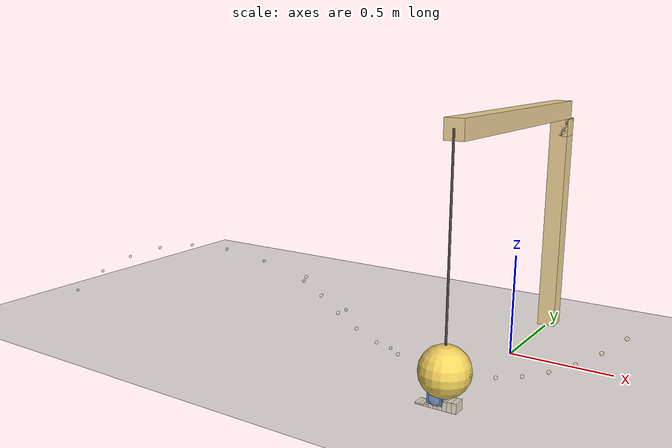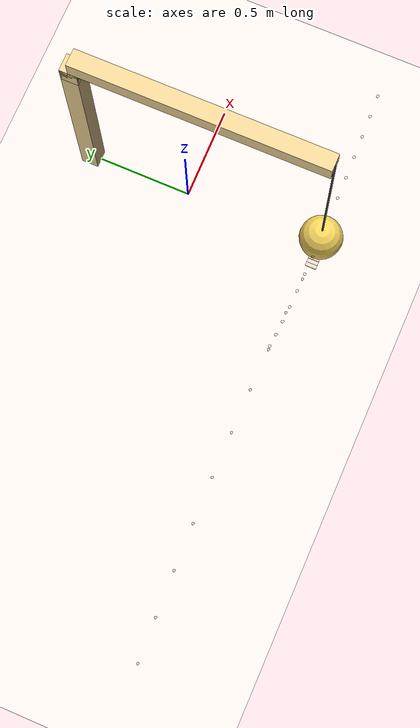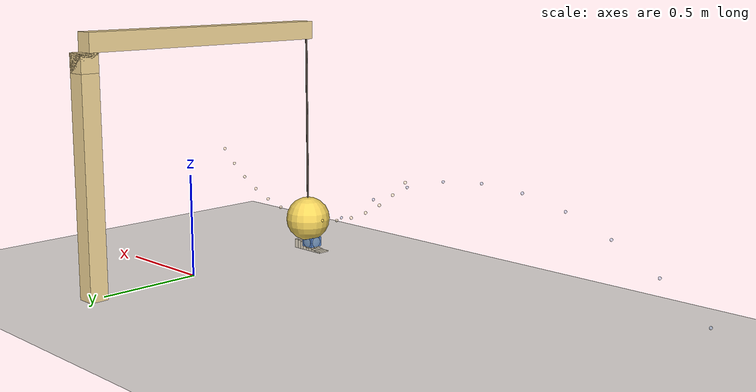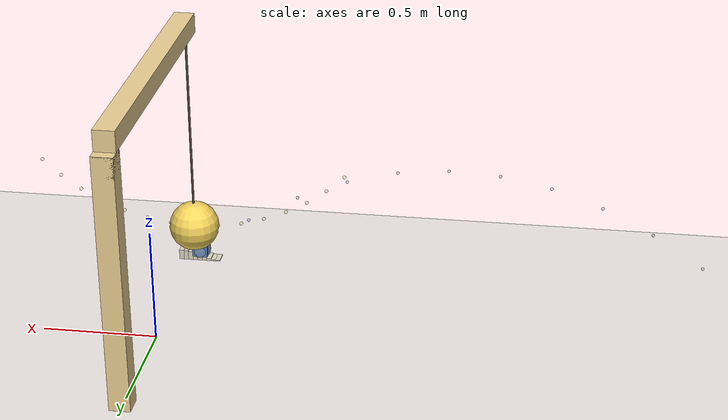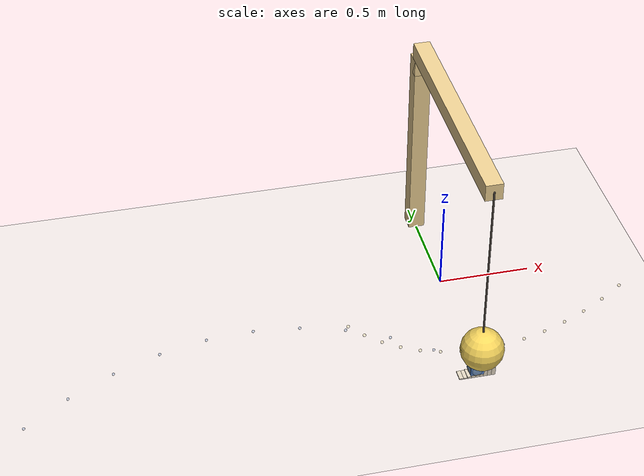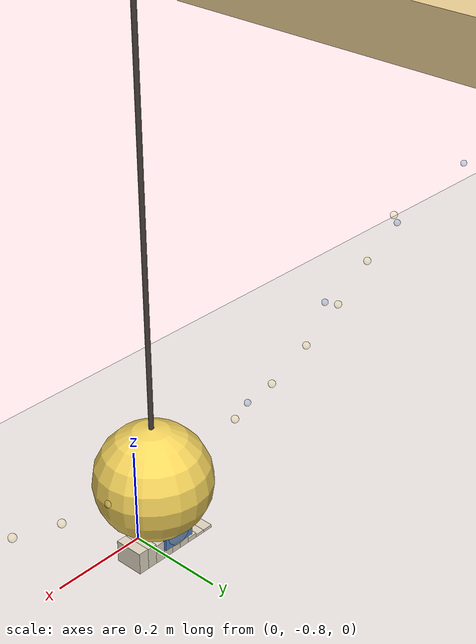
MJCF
<mujoco model="cradle_drop_demo">
  <compiler angle="radian" coordinate="local" autolimits="true"/>
  <option timestep="0.001" gravity="0 0 -9.81" integrator="implicitfast"
          impratio="3" cone="elliptic"/>

  <visual>
    <headlight diffuse="0 0 0" ambient="0.50 0.48 0.55" specular="0 0 0"/>
    <rgba haze="0.94 0.91 0.90 1"/>
    <global azimuth="120" elevation="-15" offwidth="1920" offheight="1080" fovy="40"/>
    <quality shadowsize="8192" offsamples="8"/>
    <map shadowclip="5" shadowscale="0.7"/>
  </visual>

  <asset>
    <texture type="skybox" builtin="flat"
             rgb1="0.74 0.68 0.86" rgb2="0.74 0.68 0.86"
             width="512" height="512" mark="none" markrgb="0 0 0"/>
    <material name="floor_mat" rgba="0.94 0.91 0.90 1" specular="0" shininess="0"/>
    <material name="wood" rgba="0.93 0.82 0.58 1" specular="0.1" shininess="0.1"/>
    <material name="ramp_mat" rgba="0.88 0.84 0.76 1" specular="0.05" shininess="0.05"/>
    <material name="bob_yellow" rgba="0.96 0.83 0.36 1" specular="0.35" shininess="0.4"/>
    <material name="block_blue" rgba="0.34 0.52 0.80 1" specular="0.35" shininess="0.4"/>
    <material name="string_mat" rgba="0.28 0.25 0.22 1" specular="0" shininess="0"/>
  </asset>

  <default>
    <geom friction="0.7 0.04 0.001" solref="0.002 1" solimp="0.97 0.99 0.001"/>
  </default>

  <worldbody>
    <light pos="0 0 10" dir="-0.35 0.55 -1" directional="true" castshadow="true"
           diffuse="0.85 0.82 0.78" specular="0.15 0.15 0.15"/>
    <light pos="0 0 6" dir="0.45 -0.3 -1" directional="true" castshadow="false"
           diffuse="0.30 0.30 0.36" specular="0 0 0"/>

    <geom name="floor" type="plane" size="40 40 0.1" material="floor_mat"/>

    <!-- L-stand: vertical post meets horizontal arm (no gap) -->
    <geom type="box" size="0.045 0.045 0.5600"
          pos="0 0.55 0.5600" material="wood"/>
    <geom type="box" size="0.045 0.65 0.045"
          pos="0 -0.10 1.1650" material="wood"/>
    <!-- corner block where post top meets arm -->
    <geom type="box" size="0.045 0.045 0.045"
          pos="0 0.55 1.0750" material="wood"/>

    <geom name="ramp_0" type="box" pos="-0.1100 -0.75 0.0030" size="0.011 0.030 0.0030" material="ramp_mat" contype="0" conaffinity="0"/>
    <geom name="ramp_1" type="box" pos="-0.0887 -0.75 0.0030" size="0.011 0.030 0.0030" material="ramp_mat" contype="0" conaffinity="0"/>
    <geom name="ramp_2" type="box" pos="-0.0675 -0.75 0.0051" size="0.011 0.030 0.0051" material="ramp_mat" contype="0" conaffinity="0"/>
    <geom name="ramp_3" type="box" pos="-0.0462 -0.75 0.0085" size="0.011 0.030 0.0085" material="ramp_mat" contype="0" conaffinity="0"/>
    <geom name="ramp_4" type="box" pos="-0.0250 -0.75 0.0125" size="0.011 0.030 0.0125" material="ramp_mat" contype="0" conaffinity="0"/>
    <geom name="ramp_5" type="box" pos="-0.0038 -0.75 0.0165" size="0.011 0.030 0.0165" material="ramp_mat" contype="0" conaffinity="0"/>
    <geom name="ramp_6" type="box" pos="0.0175 -0.75 0.0199" size="0.011 0.030 0.0199" material="ramp_mat" contype="0" conaffinity="0"/>
    <geom name="ramp_7" type="box" pos="0.0387 -0.75 0.0222" size="0.011 0.030 0.0222" material="ramp_mat" contype="0" conaffinity="0"/>
    <geom name="ramp_8" type="box" pos="0.0600 -0.75 0.0230" size="0.011 0.030 0.0230" material="ramp_mat" contype="0" conaffinity="0"/>

    <geom name="arc_0" type="sphere" pos="-0.7068 -0.7500 0.4576" size="0.008" rgba="0.96 0.83 0.36 0.22" contype="0" conaffinity="0"/>
    <geom name="arc_1" type="sphere" pos="-0.6232 -0.7500 0.3830" size="0.008" rgba="0.96 0.83 0.36 0.22" contype="0" conaffinity="0"/>
    <geom name="arc_2" type="sphere" pos="-0.5318 -0.7500 0.3181" size="0.008" rgba="0.96 0.83 0.36 0.22" contype="0" conaffinity="0"/>
    <geom name="arc_3" type="sphere" pos="-0.4337 -0.7500 0.2639" size="0.008" rgba="0.96 0.83 0.36 0.22" contype="0" conaffinity="0"/>
    <geom name="arc_4" type="sphere" pos="-0.3301 -0.7500 0.2211" size="0.008" rgba="0.96 0.83 0.36 0.22" contype="0" conaffinity="0"/>
    <geom name="arc_5" type="sphere" pos="-0.2224 -0.7500 0.1900" size="0.008" rgba="0.96 0.83 0.36 0.22" contype="0" conaffinity="0"/>
    <geom name="arc_6" type="sphere" pos="-0.1119 -0.7500 0.1713" size="0.008" rgba="0.96 0.83 0.36 0.22" contype="0" conaffinity="0"/>
    <geom name="arc_7" type="sphere" pos="0.0000 -0.7500 0.1650" size="0.008" rgba="0.96 0.83 0.36 0.22" contype="0" conaffinity="0"/>
    <geom name="arc_8" type="sphere" pos="0.1119 -0.7500 0.1713" size="0.008" rgba="0.96 0.83 0.36 0.22" contype="0" conaffinity="0"/>
    <geom name="arc_9" type="sphere" pos="0.2224 -0.7500 0.1900" size="0.008" rgba="0.96 0.83 0.36 0.22" contype="0" conaffinity="0"/>
    <geom name="arc_10" type="sphere" pos="0.3301 -0.7500 0.2211" size="0.008" rgba="0.96 0.83 0.36 0.22" contype="0" conaffinity="0"/>
    <geom name="arc_11" type="sphere" pos="0.4337 -0.7500 0.2639" size="0.008" rgba="0.96 0.83 0.36 0.22" contype="0" conaffinity="0"/>
    <geom name="arc_12" type="sphere" pos="0.5318 -0.7500 0.3181" size="0.008" rgba="0.96 0.83 0.36 0.22" contype="0" conaffinity="0"/>
    <geom name="arc_13" type="sphere" pos="0.6232 -0.7500 0.3830" size="0.008" rgba="0.96 0.83 0.36 0.22" contype="0" conaffinity="0"/>
    <geom name="arc_14" type="sphere" pos="0.7068 -0.7500 0.4576" size="0.008" rgba="0.96 0.83 0.36 0.22" contype="0" conaffinity="0"/>
    <geom name="parab_1" type="sphere" pos="-0.2586 -0.7500 0.2104" size="0.007" rgba="0.34 0.52 0.80 0.28" contype="0" conaffinity="0"/>
    <geom name="parab_2" type="sphere" pos="-0.4893 -0.7500 0.3406" size="0.007" rgba="0.34 0.52 0.80 0.28" contype="0" conaffinity="0"/>
    <geom name="parab_3" type="sphere" pos="-0.7199 -0.7500 0.4355" size="0.007" rgba="0.34 0.52 0.80 0.28" contype="0" conaffinity="0"/>
    <geom name="parab_4" type="sphere" pos="-0.9506 -0.7500 0.4951" size="0.007" rgba="0.34 0.52 0.80 0.28" contype="0" conaffinity="0"/>
    <geom name="parab_5" type="sphere" pos="-1.1812 -0.7500 0.5194" size="0.007" rgba="0.34 0.52 0.80 0.28" contype="0" conaffinity="0"/>
    <geom name="parab_6" type="sphere" pos="-1.4118 -0.7500 0.5084" size="0.007" rgba="0.34 0.52 0.80 0.28" contype="0" conaffinity="0"/>
    <geom name="parab_7" type="sphere" pos="-1.6425 -0.7500 0.4620" size="0.007" rgba="0.34 0.52 0.80 0.28" contype="0" conaffinity="0"/>
    <geom name="parab_8" type="sphere" pos="-1.8731 -0.7500 0.3804" size="0.007" rgba="0.34 0.52 0.80 0.28" contype="0" conaffinity="0"/>
    <geom name="parab_9" type="sphere" pos="-2.1038 -0.7500 0.2634" size="0.007" rgba="0.34 0.52 0.80 0.28" contype="0" conaffinity="0"/>
    <geom name="parab_10" type="sphere" pos="-2.3344 -0.7500 0.1111" size="0.007" rgba="0.34 0.52 0.80 0.28" contype="0" conaffinity="0"/>
    <geom name="impact_glow" type="sphere" pos="-0.0280 -0.7500 0.0448" size="0.045" rgba="0.98 0.90 0.55 0.14" contype="0" conaffinity="0"/>

    <body name="pendulum" pos="0.0 -0.75 1.165">
      <joint name="hinge" type="hinge" axis="0 1 0" damping="0.012"/>
      <geom name="string" type="capsule"
            fromto="0 0 0  0 0 -1.0" size="0.005"
            material="string_mat" contype="0" conaffinity="0"/>
      <geom name="bob" type="sphere" pos="0 0 -1.0" size="0.115"
            material="bob_yellow" mass="0.50"/>
    </body>

    <body name="top_block" pos="-0.0280 -0.7500 0.0448">
      <freejoint name="block_free"/>
      <geom name="block" type="box" size="0.035 0.035 0.025"
            material="block_blue" mass="0.05"/>
    </body>

    <camera name="cam" pos="2.6 -2.9 1.05"
            xyaxes="0.74 0.67 0   -0.12 0.13 0.98"/>
  </worldbody>
</mujoco>
